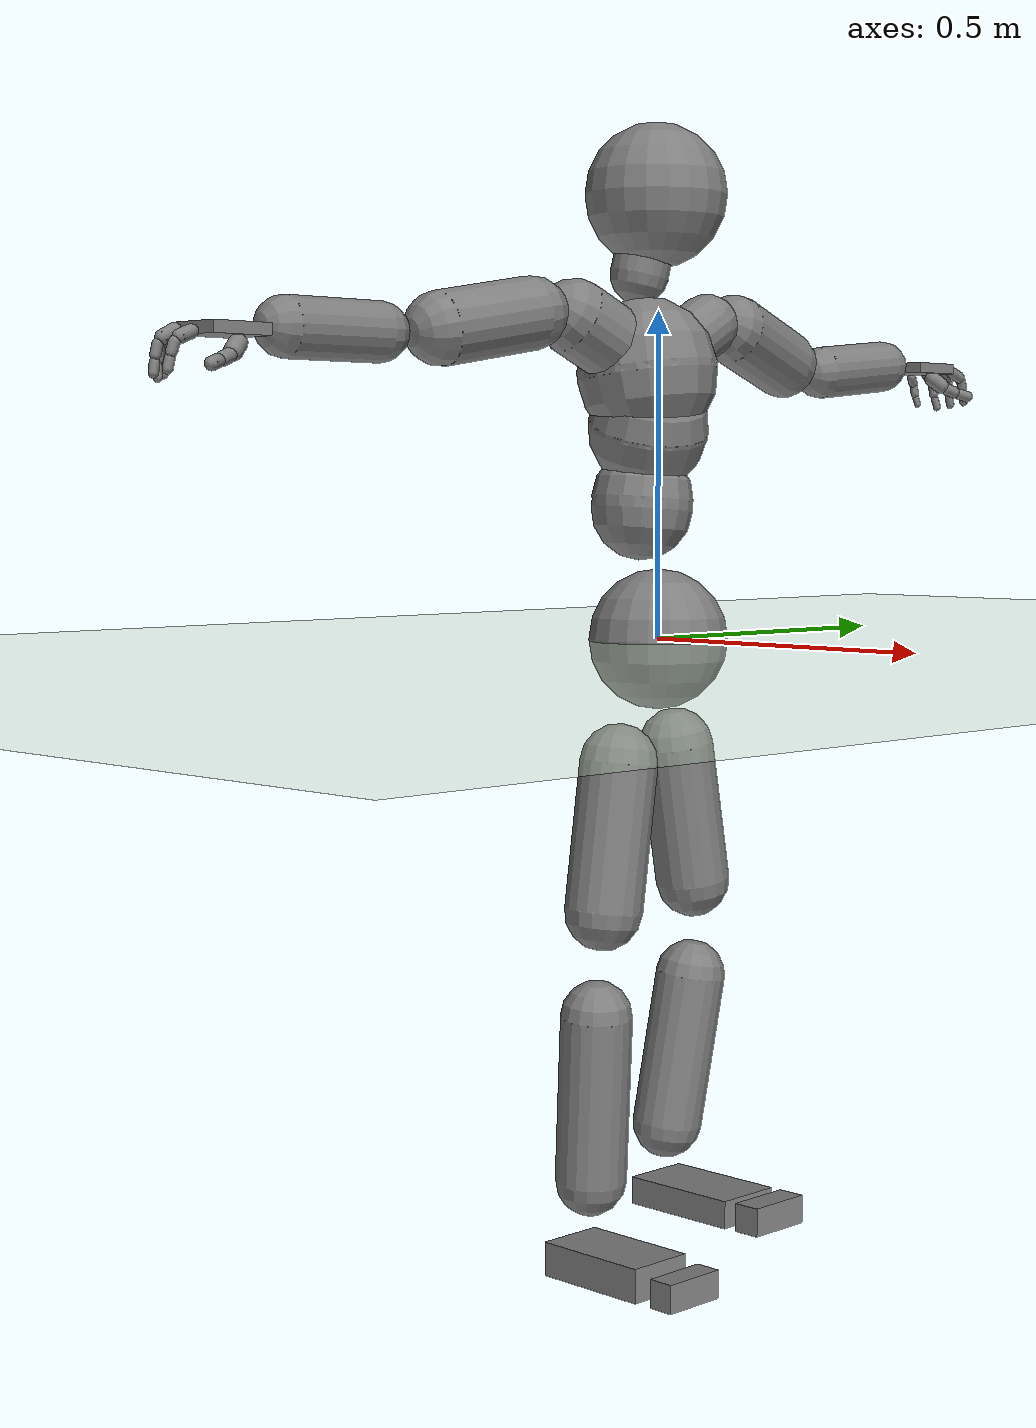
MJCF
<mujoco model="humanoid">
  <compiler coordinate="local" />
  <statistic extent="2" center="0 0 1" />
  <option timestep="0.00555" />
  <default>
    <motor ctrlrange="-1 1" ctrllimited="true" />
    <geom type="capsule" condim="1" friction="1.0 0.05 0.05" solimp=".9 .99 .003" solref=".015 1" />
    <joint type="hinge" damping="0.1" stiffness="5" armature=".007" limited="true" solimplimit="0 .99 .01" />
    <site size=".04" group="3" />
    <default class="force-torque">
      <site type="box" size=".01 .01 .02" rgba="1 0 0 1" />
    </default>
    <default class="touch">
      <site type="capsule" rgba="0 0 1 .3" />
    </default>
  </default>
  <asset>
    <texture type="skybox" builtin="gradient" rgb1=".4 .5 .6" rgb2="0 0 0" width="100" height="100" />
    <texture builtin="flat" height="1278" mark="cross" markrgb="1 1 1" name="texgeom" random="0.01" rgb1="0.8 0.6 0.4" rgb2="0.8 0.6 0.4" type="cube" width="127" />
    <texture builtin="checker" height="100" name="texplane" rgb1="0 0 0" rgb2="0.8 0.8 0.8" type="2d" width="100" />
    <material name="MatPlane" reflectance="0.5" shininess="1" specular="1" texrepeat="60 60" texture="texplane" />
    <material name="geom" texture="texgeom" texuniform="true" />
  </asset>
  <worldbody>
    <light cutoff="100" diffuse="1 1 1" dir="-0 0 -1.3" directional="true" exponent="1" pos="0 0 1.3" specular=".1 .1 .1" />
    <geom conaffinity="1" condim="3" name="floor" pos="0 0 0" rgba="0.8 0.9 0.8 1" size="100 100 .2" type="plane" material="MatPlane" />
    <body name="Pelvis" pos="0 0 0">
      <freejoint name="Pelvis" />
      <geom type="sphere" contype="1" conaffinity="1" density="1000" size="0.1080" pos="0.0000 0.0000 0.0000" name="Pelvis" />
      <body name="L_Hip" pos="-0.0236 0.0529 -0.0971">
        <joint name="L_Hip_x" type="hinge" pos="0 0 0" axis="1 0 0" stiffness="800" damping="80" armature="0.02" range="-180.0000 180.0000" />
        <joint name="L_Hip_y" type="hinge" pos="0 0 0" axis="0 1 0" stiffness="800" damping="80" armature="0.02" range="-180.0000 180.0000" />
        <joint name="L_Hip_z" type="hinge" pos="0 0 0" axis="0 0 1" stiffness="800" damping="80" armature="0.02" range="-180.0000 180.0000" />
        <geom type="capsule" contype="1" conaffinity="1" density="2040.816327" fromto="0.0007 0.0123 -0.0729 0.0029 0.0490 -0.2916" size="0.058" />
        <body name="L_Knee" pos="0.0037 0.0613 -0.3645">
          <joint name="L_Knee_x" type="hinge" pos="0 0 0" axis="1 0 0" stiffness="800" damping="80" armature="0.02" range="-180.0000 180.0000" />
          <joint name="L_Knee_y" type="hinge" pos="0 0 0" axis="0 1 0" stiffness="800" damping="80" armature="0.02" range="-180.0000 180.0000" />
          <joint name="L_Knee_z" type="hinge" pos="0 0 0" axis="0 0 1" stiffness="800" damping="80" armature="0.02" range="-180.0000 180.0000" />
          <geom type="capsule" contype="1" conaffinity="1" density="1234.567901" fromto="-0.0074 -0.0100 -0.0800 -0.0296 -0.0401 -0.3200" size="0.055" />
          <body name="L_Ankle" pos="-0.037 -0.0501 -0.4">
            <joint name="L_Ankle_x" type="hinge" pos="0 0 0" axis="1 0 0" stiffness="800" damping="80" armature="0.02" range="-180.0000 180.0000" />
            <joint name="L_Ankle_y" type="hinge" pos="0 0 0" axis="0 1 0" stiffness="800" damping="80" armature="0.02" range="-180.0000 180.0000" />
            <joint name="L_Ankle_z" type="hinge" pos="0 0 0" axis="0 0 1" stiffness="800" damping="80" armature="0.02" range="-180.0000 180.0000" />
            <geom type="box" contype="1" conaffinity="1" density="1000" pos="0.0709 0.0228 -0.0298" size="0.1004 0.0552 0.0216" quat="1.0000 0.0000 0.0000 0.0000" />
            <body name="L_Toe" pos="0.1418 0.0456 -0.0596">
              <joint name="L_Toe_x" type="hinge" pos="0 0 0" axis="1 0 0" stiffness="500" damping="50" armature="0.02" range="-180.0000 180.0000" />
              <joint name="L_Toe_y" type="hinge" pos="0 0 0" axis="0 1 0" stiffness="500" damping="50" armature="0.02" range="-180.0000 180.0000" />
              <joint name="L_Toe_z" type="hinge" pos="0 0 0" axis="0 0 1" stiffness="500" damping="50" armature="0.02" range="-180.0000 180.0000" />
              <geom type="box" contype="1" conaffinity="1" density="1000" pos="0.0719 -0.0228 0.0304" size="0.022 0.0532 0.0221" quat="1.0000 0.0000 0.0000 0.0000" />
            </body>
          </body>
        </body>
      </body>
      <body name="R_Hip" pos="-0.0169 -0.0579 -0.1123">
        <joint name="R_Hip_x" type="hinge" pos="0 0 0" axis="1 0 0" stiffness="800" damping="80" armature="0.02" range="-180.0000 180.0000" />
        <joint name="R_Hip_y" type="hinge" pos="0 0 0" axis="0 1 0" stiffness="800" damping="80" armature="0.02" range="-180.0000 180.0000" />
        <joint name="R_Hip_z" type="hinge" pos="0 0 0" axis="0 0 1" stiffness="800" damping="80" armature="0.02" range="-180.0000 180.0000" />
        <geom type="capsule" contype="1" conaffinity="1" density="2040.816327" fromto="-0.0014 -0.0098 -0.0759 -0.0055 -0.0391 -0.3038" size="0.0606" />
        <body name="R_Knee" pos="-0.0069 -0.0489 -0.3797">
          <joint name="R_Knee_x" type="hinge" pos="0 0 0" axis="1 0 0" stiffness="800" damping="80" armature="0.02" range="-180.0000 180.0000" />
          <joint name="R_Knee_y" type="hinge" pos="0 0 0" axis="0 1 0" stiffness="800" damping="80" armature="0.02" range="-180.0000 180.0000" />
          <joint name="R_Knee_z" type="hinge" pos="0 0 0" axis="0 0 1" stiffness="800" damping="80" armature="0.02" range="-180.0000 180.0000" />
          <geom type="capsule" contype="1" conaffinity="1" density="1234.567901" fromto="-0.0081 0.0038 -0.0879 -0.0324 0.0152 -0.3516" size="0.0559" />
          <body name="R_Ankle" pos="-0.0405 0.0191 -0.4396">
            <joint name="R_Ankle_x" type="hinge" pos="0 0 0" axis="1 0 0" stiffness="800" damping="80" armature="0.02" range="-180.0000 180.0000" />
            <joint name="R_Ankle_y" type="hinge" pos="0 0 0" axis="0 1 0" stiffness="800" damping="80" armature="0.02" range="-180.0000 180.0000" />
            <joint name="R_Ankle_z" type="hinge" pos="0 0 0" axis="0 0 1" stiffness="800" damping="80" armature="0.02" range="-180.0000 180.0000" />
            <geom type="box" contype="1" conaffinity="1" density="1000" pos="0.0734 -0.0176 -0.0304" size="0.0979 0.0545 0.0266" quat="1.0000 0.0000 0.0000 0.0000" />
            <body name="R_Toe" pos="0.1468 -0.0352 -0.0608">
              <joint name="R_Toe_x" type="hinge" pos="0 0 0" axis="1 0 0" stiffness="500" damping="50" armature="0.02" range="-180.0000 180.0000" />
              <joint name="R_Toe_y" type="hinge" pos="0 0 0" axis="0 1 0" stiffness="500" damping="50" armature="0.02" range="-180.0000 180.0000" />
              <joint name="R_Toe_z" type="hinge" pos="0 0 0" axis="0 0 1" stiffness="500" damping="50" armature="0.02" range="-180.0000 180.0000" />
              <geom type="box" contype="1" conaffinity="1" density="1000" pos="0.0744 0.0176 0.0259" size="0.021 0.0522 0.0221" quat="1.0000 0.0000 0.0000 0.0000" />
            </body>
          </body>
        </body>
      </body>
      <body name="Torso" pos="-0.0392 -0.0024 0.1234">
        <joint name="Torso_x" type="hinge" pos="0 0 0" axis="1 0 0" stiffness="1000" damping="100" armature="0.02" range="-180.0000 180.0000" />
        <joint name="Torso_y" type="hinge" pos="0 0 0" axis="0 1 0" stiffness="1000" damping="100" armature="0.02" range="-180.0000 180.0000" />
        <joint name="Torso_z" type="hinge" pos="0 0 0" axis="0 0 1" stiffness="1000" damping="100" armature="0.02" range="-180.0000 180.0000" />
        <geom type="capsule" contype="1" conaffinity="1" density="1234.567901" fromto="0.0010 0.0056 0.0756 0.0013 0.0068 0.0924" size="0.0787" />
        <body name="Spine" pos="0.0023 0.0124 0.168">
          <joint name="Spine_x" type="hinge" pos="0 0 0" axis="1 0 0" stiffness="1000" damping="100" armature="0.02" range="-180.0000 180.0000" />
          <joint name="Spine_y" type="hinge" pos="0 0 0" axis="0 1 0" stiffness="1000" damping="100" armature="0.02" range="-180.0000 180.0000" />
          <joint name="Spine_z" type="hinge" pos="0 0 0" axis="0 0 1" stiffness="1000" damping="100" armature="0.02" range="-180.0000 180.0000" />
          <geom type="capsule" contype="1" conaffinity="1" density="1234.567901" fromto="0.0097 -0.0046 0.0284 0.0119 -0.0056 0.0347" size="0.093" />
          <body name="Chest" pos="0.0216 -0.0102 0.0631">
            <joint name="Chest_x" type="hinge" pos="0 0 0" axis="1 0 0" stiffness="1000" damping="100" armature="0.02" range="-180.0000 180.0000" />
            <joint name="Chest_y" type="hinge" pos="0 0 0" axis="0 1 0" stiffness="1000" damping="100" armature="0.02" range="-180.0000 180.0000" />
            <joint name="Chest_z" type="hinge" pos="0 0 0" axis="0 0 1" stiffness="1000" damping="100" armature="0.02" range="-180.0000 180.0000" />
            <geom type="capsule" contype="1" conaffinity="1" density="1234.567901" fromto="-0.0056 -0.0020 0.0496 -0.0068 -0.0025 0.0606" size="0.1083" />
            <body name="Neck" pos="-0.0248 -0.0095 0.1718">
              <joint name="Neck_x" type="hinge" pos="0 0 0" axis="1 0 0" stiffness="500" damping="50" armature="0.02" range="-180.0000 180.0000" />
              <joint name="Neck_y" type="hinge" pos="0 0 0" axis="0 1 0" stiffness="500" damping="50" armature="0.02" range="-180.0000 180.0000" />
              <joint name="Neck_z" type="hinge" pos="0 0 0" axis="0 0 1" stiffness="500" damping="50" armature="0.02" range="-180.0000 180.0000" />
              <geom type="capsule" contype="1" conaffinity="1" density="1000" fromto="0.0043 0.0048 0.0301 0.0170 0.0191 0.1204" size="0.0452" />
              <body name="Head" pos="0.0213 0.0239 0.1505">
                <joint name="Head_x" type="hinge" pos="0 0 0" axis="1 0 0" stiffness="500" damping="50" armature="0.02" range="-180.0000 180.0000" />
                <joint name="Head_y" type="hinge" pos="0 0 0" axis="0 1 0" stiffness="500" damping="50" armature="0.02" range="-180.0000 180.0000" />
                <joint name="Head_z" type="hinge" pos="0 0 0" axis="0 0 1" stiffness="500" damping="50" armature="0.02" range="-180.0000 180.0000" />
                <geom type="sphere" contype="1" conaffinity="1" density="1000" size="0.1100" pos="0.0000 0.0000 0.0000" name="Head" />
              </body>
            </body>
            <body name="L_Thorax" pos="-0.0042 0.0404 0.0791">
              <joint name="L_Thorax_x" type="hinge" pos="0 0 0" axis="1 0 0" stiffness="500" damping="50" armature="0.02" range="-180.0000 180.0000" />
              <joint name="L_Thorax_y" type="hinge" pos="0 0 0" axis="0 1 0" stiffness="500" damping="50" armature="0.02" range="-180.0000 180.0000" />
              <joint name="L_Thorax_z" type="hinge" pos="0 0 0" axis="0 0 1" stiffness="500" damping="50" armature="0.02" range="-180.0000 180.0000" />
              <geom type="capsule" contype="1" conaffinity="1" density="1000" fromto="-0.0039 0.0268 0.0134 -0.0156 0.1071 0.0534" size="0.0493" />
              <body name="L_Shoulder" pos="-0.0195 0.1339 0.0668">
                <joint name="L_Shoulder_x" type="hinge" pos="0 0 0" axis="1 0 0" stiffness="500" damping="50" armature="0.02" range="-180.0000 180.0000" />
                <joint name="L_Shoulder_y" type="hinge" pos="0 0 0" axis="0 1 0" stiffness="500" damping="50" armature="0.02" range="-180.0000 180.0000" />
                <joint name="L_Shoulder_z" type="hinge" pos="0 0 0" axis="0 0 1" stiffness="500" damping="50" armature="0.02" range="-180.0000 180.0000" />
                <geom type="capsule" contype="1" conaffinity="1" density="1000" fromto="-0.0088 0.0507 -0.0160 -0.0352 0.2029 -0.0641" size="0.0556" />
                <body name="L_Elbow" pos="-0.044 0.2536 -0.0802">
                  <joint name="L_Elbow_x" type="hinge" pos="0 0 0" axis="1 0 0" stiffness="500" damping="50" armature="0.02" range="-180.0000 180.0000" />
                  <joint name="L_Elbow_y" type="hinge" pos="0 0 0" axis="0 1 0" stiffness="500" damping="50" armature="0.02" range="-180.0000 180.0000" />
                  <joint name="L_Elbow_z" type="hinge" pos="0 0 0" axis="0 0 1" stiffness="500" damping="50" armature="0.02" range="-180.0000 180.0000" />
                  <geom type="capsule" contype="1" conaffinity="1" density="1000" fromto="0.0000 0.0551 0.0054 0.0001 0.2204 0.0214" size="0.0428" />
                  <body name="L_Wrist" pos="0.0001 0.2755 0.0268">
                    <joint name="L_Wrist_x" type="hinge" pos="0 0 0" axis="1 0 0" stiffness="300" damping="30" armature="0.02" range="-180.0000 180.0000" />
                    <joint name="L_Wrist_y" type="hinge" pos="0 0 0" axis="0 1 0" stiffness="300" damping="30" armature="0.02" range="-180.0000 180.0000" />
                    <joint name="L_Wrist_z" type="hinge" pos="0 0 0" axis="0 0 1" stiffness="300" damping="30" armature="0.02" range="-180.0000 180.0000" />
                    <geom type="box" contype="1" conaffinity="1" density="1000" pos="-0.0031 0.0467 -0.0059" size="0.0448 0.0475 0.0085" quat="1.0000 0.0000 0.0000 0.0000" />
                    <body name="L_Index1" pos="0.0221 0.11 -0.0088">
                      <joint name="L_Index1_x" type="hinge" pos="0 0 0" axis="1 0 0" stiffness="100" damping="10" armature="0.02" range="-180.0000 180.0000" />
                      <joint name="L_Index1_y" type="hinge" pos="0 0 0" axis="0 1 0" stiffness="100" damping="10" armature="0.02" range="-180.0000 180.0000" />
                      <joint name="L_Index1_z" type="hinge" pos="0 0 0" axis="0 0 1" stiffness="100" damping="10" armature="0.02" range="-180.0000 180.0000" />
                      <geom type="capsule" contype="1" conaffinity="1" density="1000" fromto="0.0003 0.0064 -0.0025 0.0014 0.0257 -0.0101" size="0.01" />
                      <body name="L_Index2" pos="0.0017 0.0322 -0.0126">
                        <joint name="L_Index2_x" type="hinge" pos="0 0 0" axis="1 0 0" stiffness="100" damping="10" armature="0.02" range="-180.0000 180.0000" />
                        <joint name="L_Index2_y" type="hinge" pos="0 0 0" axis="0 1 0" stiffness="100" damping="10" armature="0.02" range="-180.0000 180.0000" />
                        <joint name="L_Index2_z" type="hinge" pos="0 0 0" axis="0 0 1" stiffness="100" damping="10" armature="0.02" range="-180.0000 180.0000" />
                        <geom type="capsule" contype="1" conaffinity="1" density="1000" fromto="-0.0006 0.0013 -0.0046 -0.0025 0.0053 -0.0185" size="0.008" />
                        <body name="L_Index3" pos="-0.0031 0.0067 -0.0231">
                          <joint name="L_Index3_x" type="hinge" pos="0 0 0" axis="1 0 0" stiffness="100" damping="10" armature="0.02" range="-180.0000 180.0000" />
                          <joint name="L_Index3_y" type="hinge" pos="0 0 0" axis="0 1 0" stiffness="100" damping="10" armature="0.02" range="-180.0000 180.0000" />
                          <joint name="L_Index3_z" type="hinge" pos="0 0 0" axis="0 0 1" stiffness="100" damping="10" armature="0.02" range="-180.0000 180.0000" />
                          <geom type="capsule" contype="1" conaffinity="1" density="1000" fromto="-0.0002 0.0017 -0.0042 -0.0009 0.0069 -0.0169" size="0.0073" />
                        </body>
                      </body>
                    </body>
                    <body name="L_Middle1" pos="-0.0036 0.1182 -0.0057">
                      <joint name="L_Middle1_x" type="hinge" pos="0 0 0" axis="1 0 0" stiffness="100" damping="10" armature="0.02" range="-180.0000 180.0000" />
                      <joint name="L_Middle1_y" type="hinge" pos="0 0 0" axis="0 1 0" stiffness="100" damping="10" armature="0.02" range="-180.0000 180.0000" />
                      <joint name="L_Middle1_z" type="hinge" pos="0 0 0" axis="0 0 1" stiffness="100" damping="10" armature="0.02" range="-180.0000 180.0000" />
                      <geom type="capsule" contype="1" conaffinity="1" density="1000" fromto="-0.0010 0.0056 -0.0033 -0.0040 0.0226 -0.0132" size="0.0102" />
                      <body name="L_Middle2" pos="-0.005 0.0282 -0.0165">
                        <joint name="L_Middle2_x" type="hinge" pos="0 0 0" axis="1 0 0" stiffness="100" damping="10" armature="0.02" range="-180.0000 180.0000" />
                        <joint name="L_Middle2_y" type="hinge" pos="0 0 0" axis="0 1 0" stiffness="100" damping="10" armature="0.02" range="-180.0000 180.0000" />
                        <joint name="L_Middle2_z" type="hinge" pos="0 0 0" axis="0 0 1" stiffness="100" damping="10" armature="0.02" range="-180.0000 180.0000" />
                        <geom type="capsule" contype="1" conaffinity="1" density="1000" fromto="-0.0004 0.0010 -0.0050 -0.0017 0.0039 -0.0201" size="0.0076" />
                        <body name="L_Middle3" pos="-0.0021 0.0048 -0.0251">
                          <joint name="L_Middle3_x" type="hinge" pos="0 0 0" axis="1 0 0" stiffness="100" damping="10" armature="0.02" range="-180.0000 180.0000" />
                          <joint name="L_Middle3_y" type="hinge" pos="0 0 0" axis="0 1 0" stiffness="100" damping="10" armature="0.02" range="-180.0000 180.0000" />
                          <joint name="L_Middle3_z" type="hinge" pos="0 0 0" axis="0 0 1" stiffness="100" damping="10" armature="0.02" range="-180.0000 180.0000" />
                          <geom type="capsule" contype="1" conaffinity="1" density="1000" fromto="-0.0000 0.0014 -0.0046 -0.0001 0.0055 -0.0185" size="0.0069" />
                        </body>
                      </body>
                    </body>
                    <body name="L_Pinky1" pos="-0.0484 0.0907 -0.0149">
                      <joint name="L_Pinky1_x" type="hinge" pos="0 0 0" axis="1 0 0" stiffness="100" damping="10" armature="0.02" range="-180.0000 180.0000" />
                      <joint name="L_Pinky1_y" type="hinge" pos="0 0 0" axis="0 1 0" stiffness="100" damping="10" armature="0.02" range="-180.0000 180.0000" />
                      <joint name="L_Pinky1_z" type="hinge" pos="0 0 0" axis="0 0 1" stiffness="100" damping="10" armature="0.02" range="-180.0000 180.0000" />
                      <geom type="capsule" contype="1" conaffinity="1" density="1000" fromto="-0.0010 0.0026 -0.0032 -0.0039 0.0106 -0.0129" size="0.0076" />
                      <body name="L_Pinky2" pos="-0.0049 0.0132 -0.0161">
                        <joint name="L_Pinky2_x" type="hinge" pos="0 0 0" axis="1 0 0" stiffness="100" damping="10" armature="0.02" range="-180.0000 180.0000" />
                        <joint name="L_Pinky2_y" type="hinge" pos="0 0 0" axis="0 1 0" stiffness="100" damping="10" armature="0.02" range="-180.0000 180.0000" />
                        <joint name="L_Pinky2_z" type="hinge" pos="0 0 0" axis="0 0 1" stiffness="100" damping="10" armature="0.02" range="-180.0000 180.0000" />
                        <geom type="capsule" contype="1" conaffinity="1" density="1000" fromto="0.0002 0.0008 -0.0040 0.0008 0.0031 -0.0162" size="0.0067" />
                        <body name="L_Pinky3" pos="0.0009 0.0039 -0.0202">
                          <joint name="L_Pinky3_x" type="hinge" pos="0 0 0" axis="1 0 0" stiffness="100" damping="10" armature="0.02" range="-180.0000 180.0000" />
                          <joint name="L_Pinky3_y" type="hinge" pos="0 0 0" axis="0 1 0" stiffness="100" damping="10" armature="0.02" range="-180.0000 180.0000" />
                          <joint name="L_Pinky3_z" type="hinge" pos="0 0 0" axis="0 0 1" stiffness="100" damping="10" armature="0.02" range="-180.0000 180.0000" />
                          <geom type="capsule" contype="1" conaffinity="1" density="1000" fromto="0.0006 0.0012 -0.0036 0.0024 0.0047 -0.0146" size="0.0054" />
                        </body>
                      </body>
                    </body>
                    <body name="L_Ring1" pos="-0.0298 0.1052 -0.0088">
                      <joint name="L_Ring1_x" type="hinge" pos="0 0 0" axis="1 0 0" stiffness="100" damping="10" armature="0.02" range="-180.0000 180.0000" />
                      <joint name="L_Ring1_y" type="hinge" pos="0 0 0" axis="0 1 0" stiffness="100" damping="10" armature="0.02" range="-180.0000 180.0000" />
                      <joint name="L_Ring1_z" type="hinge" pos="0 0 0" axis="0 0 1" stiffness="100" damping="10" armature="0.02" range="-180.0000 180.0000" />
                      <geom type="capsule" contype="1" conaffinity="1" density="1000" fromto="-0.0003 0.0050 -0.0036 -0.0011 0.0199 -0.0144" size="0.0086" />
                      <body name="L_Ring2" pos="-0.0014 0.0249 -0.018">
                        <joint name="L_Ring2_x" type="hinge" pos="0 0 0" axis="1 0 0" stiffness="100" damping="10" armature="0.02" range="-180.0000 180.0000" />
                        <joint name="L_Ring2_y" type="hinge" pos="0 0 0" axis="0 1 0" stiffness="100" damping="10" armature="0.02" range="-180.0000 180.0000" />
                        <joint name="L_Ring2_z" type="hinge" pos="0 0 0" axis="0 0 1" stiffness="100" damping="10" armature="0.02" range="-180.0000 180.0000" />
                        <geom type="capsule" contype="1" conaffinity="1" density="1000" fromto="0.0003 0.0008 -0.0050 0.0013 0.0031 -0.0201" size="0.0078" />
                        <body name="L_Ring3" pos="0.0017 0.0039 -0.0252">
                          <joint name="L_Ring3_x" type="hinge" pos="0 0 0" axis="1 0 0" stiffness="100" damping="10" armature="0.02" range="-180.0000 180.0000" />
                          <joint name="L_Ring3_y" type="hinge" pos="0 0 0" axis="0 1 0" stiffness="100" damping="10" armature="0.02" range="-180.0000 180.0000" />
                          <joint name="L_Ring3_z" type="hinge" pos="0 0 0" axis="0 0 1" stiffness="100" damping="10" armature="0.02" range="-180.0000 180.0000" />
                          <geom type="capsule" contype="1" conaffinity="1" density="1000" fromto="0.0007 0.0012 -0.0046 0.0029 0.0047 -0.0185" size="0.0064" />
                        </body>
                      </body>
                    </body>
                    <body name="L_Thumb1" pos="0.0288 0.0433 -0.0205">
                      <joint name="L_Thumb1_x" type="hinge" pos="0 0 0" axis="1 0 0" stiffness="100" damping="10" armature="0.02" range="-180.0000 180.0000" />
                      <joint name="L_Thumb1_y" type="hinge" pos="0 0 0" axis="0 1 0" stiffness="100" damping="10" armature="0.02" range="-180.0000 180.0000" />
                      <joint name="L_Thumb1_z" type="hinge" pos="0 0 0" axis="0 0 1" stiffness="100" damping="10" armature="0.02" range="-180.0000 180.0000" />
                      <geom type="capsule" contype="1" conaffinity="1" density="1000" fromto="0.0028 0.0046 -0.0039 0.0112 0.0186 -0.0154" size="0.0135" />
                      <body name="L_Thumb2" pos="0.014 0.0232 -0.0193">
                        <joint name="L_Thumb2_x" type="hinge" pos="0 0 0" axis="1 0 0" stiffness="100" damping="10" armature="0.02" range="-180.0000 180.0000" />
                        <joint name="L_Thumb2_y" type="hinge" pos="0 0 0" axis="0 1 0" stiffness="100" damping="10" armature="0.02" range="-180.0000 180.0000" />
                        <joint name="L_Thumb2_z" type="hinge" pos="0 0 0" axis="0 0 1" stiffness="100" damping="10" armature="0.02" range="-180.0000 180.0000" />
                        <geom type="capsule" contype="1" conaffinity="1" density="1000" fromto="0.0016 0.0051 -0.0018 0.0064 0.0204 -0.0072" size="0.0103" />
                        <body name="L_Thumb3" pos="0.008 0.0255 -0.0089">
                          <joint name="L_Thumb3_x" type="hinge" pos="0 0 0" axis="1 0 0" stiffness="100" damping="10" armature="0.02" range="-180.0000 180.0000" />
                          <joint name="L_Thumb3_y" type="hinge" pos="0 0 0" axis="0 1 0" stiffness="100" damping="10" armature="0.02" range="-180.0000 180.0000" />
                          <joint name="L_Thumb3_z" type="hinge" pos="0 0 0" axis="0 0 1" stiffness="100" damping="10" armature="0.02" range="-180.0000 180.0000" />
                          <geom type="capsule" contype="1" conaffinity="1" density="1000" fromto="0.0020 0.0055 -0.0014 0.0080 0.0220 -0.0056" size="0.0095" />
                        </body>
                      </body>
                    </body>
                  </body>
                </body>
              </body>
            </body>
            <body name="R_Thorax" pos="-0.0081 -0.0443 0.0799">
              <joint name="R_Thorax_x" type="hinge" pos="0 0 0" axis="1 0 0" stiffness="500" damping="50" armature="0.02" range="-180.0000 180.0000" />
              <joint name="R_Thorax_y" type="hinge" pos="0 0 0" axis="0 1 0" stiffness="500" damping="50" armature="0.02" range="-180.0000 180.0000" />
              <joint name="R_Thorax_z" type="hinge" pos="0 0 0" axis="0 0 1" stiffness="500" damping="50" armature="0.02" range="-180.0000 180.0000" />
              <geom type="capsule" contype="1" conaffinity="1" density="1000" fromto="-0.0030 -0.0248 0.0127 -0.0122 -0.0994 0.0510" size="0.0583" />
              <body name="R_Shoulder" pos="-0.0152 -0.1242 0.0637">
                <joint name="R_Shoulder_x" type="hinge" pos="0 0 0" axis="1 0 0" stiffness="500" damping="50" armature="0.02" range="-180.0000 180.0000" />
                <joint name="R_Shoulder_y" type="hinge" pos="0 0 0" axis="0 1 0" stiffness="500" damping="50" armature="0.02" range="-180.0000 180.0000" />
                <joint name="R_Shoulder_z" type="hinge" pos="0 0 0" axis="0 0 1" stiffness="500" damping="50" armature="0.02" range="-180.0000 180.0000" />
                <geom type="capsule" contype="1" conaffinity="1" density="1000" fromto="-0.0064 -0.0542 -0.0096 -0.0257 -0.2166 -0.0385" size="0.0549" />
                <body name="R_Elbow" pos="-0.0321 -0.2708 -0.0481">
                  <joint name="R_Elbow_x" type="hinge" pos="0 0 0" axis="1 0 0" stiffness="500" damping="50" armature="0.02" range="-180.0000 180.0000" />
                  <joint name="R_Elbow_y" type="hinge" pos="0 0 0" axis="0 1 0" stiffness="500" damping="50" armature="0.02" range="-180.0000 180.0000" />
                  <joint name="R_Elbow_z" type="hinge" pos="0 0 0" axis="0 0 1" stiffness="500" damping="50" armature="0.02" range="-180.0000 180.0000" />
                  <geom type="capsule" contype="1" conaffinity="1" density="1000" fromto="-0.0022 -0.0534 0.0001 -0.0090 -0.2137 0.0006" size="0.0439" />
                  <body name="R_Wrist" pos="-0.0112 -0.2671 0.0007">
                    <joint name="R_Wrist_x" type="hinge" pos="0 0 0" axis="1 0 0" stiffness="300" damping="30" armature="0.02" range="-180.0000 180.0000" />
                    <joint name="R_Wrist_y" type="hinge" pos="0 0 0" axis="0 1 0" stiffness="300" damping="30" armature="0.02" range="-180.0000 180.0000" />
                    <joint name="R_Wrist_z" type="hinge" pos="0 0 0" axis="0 0 1" stiffness="300" damping="30" armature="0.02" range="-180.0000 180.0000" />
                    <geom type="box" contype="1" conaffinity="1" density="1000" pos="-0.0036 -0.0464 -0.0077" size="0.0448 0.0488 0.0086" quat="1.0000 0.0000 0.0000 0.0000" />
                    <body name="R_Index1" pos="0.0209 -0.1094 -0.0125">
                      <joint name="R_Index1_x" type="hinge" pos="0 0 0" axis="1 0 0" stiffness="100" damping="10" armature="0.02" range="-180.0000 180.0000" />
                      <joint name="R_Index1_y" type="hinge" pos="0 0 0" axis="0 1 0" stiffness="100" damping="10" armature="0.02" range="-180.0000 180.0000" />
                      <joint name="R_Index1_z" type="hinge" pos="0 0 0" axis="0 0 1" stiffness="100" damping="10" armature="0.02" range="-180.0000 180.0000" />
                      <geom type="capsule" contype="1" conaffinity="1" density="1000" fromto="0.0003 -0.0064 -0.0025 0.0014 -0.0257 -0.0101" size="0.01" />
                      <body name="R_Index2" pos="0.0017 -0.0322 -0.0126">
                        <joint name="R_Index2_x" type="hinge" pos="0 0 0" axis="1 0 0" stiffness="100" damping="10" armature="0.02" range="-180.0000 180.0000" />
                        <joint name="R_Index2_y" type="hinge" pos="0 0 0" axis="0 1 0" stiffness="100" damping="10" armature="0.02" range="-180.0000 180.0000" />
                        <joint name="R_Index2_z" type="hinge" pos="0 0 0" axis="0 0 1" stiffness="100" damping="10" armature="0.02" range="-180.0000 180.0000" />
                        <geom type="capsule" contype="1" conaffinity="1" density="1000" fromto="-0.0006 -0.0013 -0.0046 -0.0025 -0.0053 -0.0185" size="0.008" />
                        <body name="R_Index3" pos="-0.0031 -0.0067 -0.0231">
                          <joint name="R_Index3_x" type="hinge" pos="0 0 0" axis="1 0 0" stiffness="100" damping="10" armature="0.02" range="-180.0000 180.0000" />
                          <joint name="R_Index3_y" type="hinge" pos="0 0 0" axis="0 1 0" stiffness="100" damping="10" armature="0.02" range="-180.0000 180.0000" />
                          <joint name="R_Index3_z" type="hinge" pos="0 0 0" axis="0 0 1" stiffness="100" damping="10" armature="0.02" range="-180.0000 180.0000" />
                          <geom type="capsule" contype="1" conaffinity="1" density="1000" fromto="-0.0002 -0.0009 -0.0042 -0.0009 -0.0037 -0.0169" size="0.0074" />
                        </body>
                      </body>
                    </body>
                    <body name="R_Middle1" pos="-0.0047 -0.1176 -0.0095">
                      <joint name="R_Middle1_x" type="hinge" pos="0 0 0" axis="1 0 0" stiffness="100" damping="10" armature="0.02" range="-180.0000 180.0000" />
                      <joint name="R_Middle1_y" type="hinge" pos="0 0 0" axis="0 1 0" stiffness="100" damping="10" armature="0.02" range="-180.0000 180.0000" />
                      <joint name="R_Middle1_z" type="hinge" pos="0 0 0" axis="0 0 1" stiffness="100" damping="10" armature="0.02" range="-180.0000 180.0000" />
                      <geom type="capsule" contype="1" conaffinity="1" density="1000" fromto="-0.0010 -0.0056 -0.0033 -0.0040 -0.0226 -0.0132" size="0.0102" />
                      <body name="R_Middle2" pos="-0.005 -0.0282 -0.0165">
                        <joint name="R_Middle2_x" type="hinge" pos="0 0 0" axis="1 0 0" stiffness="100" damping="10" armature="0.02" range="-180.0000 180.0000" />
                        <joint name="R_Middle2_y" type="hinge" pos="0 0 0" axis="0 1 0" stiffness="100" damping="10" armature="0.02" range="-180.0000 180.0000" />
                        <joint name="R_Middle2_z" type="hinge" pos="0 0 0" axis="0 0 1" stiffness="100" damping="10" armature="0.02" range="-180.0000 180.0000" />
                        <geom type="capsule" contype="1" conaffinity="1" density="1000" fromto="-0.0004 -0.0010 -0.0050 -0.0017 -0.0039 -0.0201" size="0.0076" />
                        <body name="R_Middle3" pos="-0.0021 -0.0048 -0.0251">
                          <joint name="R_Middle3_x" type="hinge" pos="0 0 0" axis="1 0 0" stiffness="100" damping="10" armature="0.02" range="-180.0000 180.0000" />
                          <joint name="R_Middle3_y" type="hinge" pos="0 0 0" axis="0 1 0" stiffness="100" damping="10" armature="0.02" range="-180.0000 180.0000" />
                          <joint name="R_Middle3_z" type="hinge" pos="0 0 0" axis="0 0 1" stiffness="100" damping="10" armature="0.02" range="-180.0000 180.0000" />
                          <geom type="capsule" contype="1" conaffinity="1" density="1000" fromto="-0.0000 -0.0006 -0.0046 -0.0001 -0.0023 -0.0185" size="0.007" />
                        </body>
                      </body>
                    </body>
                    <body name="R_Pinky1" pos="-0.0495 -0.0901 -0.0187">
                      <joint name="R_Pinky1_x" type="hinge" pos="0 0 0" axis="1 0 0" stiffness="100" damping="10" armature="0.02" range="-180.0000 180.0000" />
                      <joint name="R_Pinky1_y" type="hinge" pos="0 0 0" axis="0 1 0" stiffness="100" damping="10" armature="0.02" range="-180.0000 180.0000" />
                      <joint name="R_Pinky1_z" type="hinge" pos="0 0 0" axis="0 0 1" stiffness="100" damping="10" armature="0.02" range="-180.0000 180.0000" />
                      <geom type="capsule" contype="1" conaffinity="1" density="1000" fromto="-0.0010 -0.0026 -0.0032 -0.0039 -0.0106 -0.0129" size="0.0076" />
                      <body name="R_Pinky2" pos="-0.0049 -0.0132 -0.0161">
                        <joint name="R_Pinky2_x" type="hinge" pos="0 0 0" axis="1 0 0" stiffness="100" damping="10" armature="0.02" range="-180.0000 180.0000" />
                        <joint name="R_Pinky2_y" type="hinge" pos="0 0 0" axis="0 1 0" stiffness="100" damping="10" armature="0.02" range="-180.0000 180.0000" />
                        <joint name="R_Pinky2_z" type="hinge" pos="0 0 0" axis="0 0 1" stiffness="100" damping="10" armature="0.02" range="-180.0000 180.0000" />
                        <geom type="capsule" contype="1" conaffinity="1" density="1000" fromto="0.0002 -0.0008 -0.0040 0.0008 -0.0031 -0.0162" size="0.0067" />
                        <body name="R_Pinky3" pos="0.0009 -0.0039 -0.0202">
                          <joint name="R_Pinky3_x" type="hinge" pos="0 0 0" axis="1 0 0" stiffness="100" damping="10" armature="0.02" range="-180.0000 180.0000" />
                          <joint name="R_Pinky3_y" type="hinge" pos="0 0 0" axis="0 1 0" stiffness="100" damping="10" armature="0.02" range="-180.0000 180.0000" />
                          <joint name="R_Pinky3_z" type="hinge" pos="0 0 0" axis="0 0 1" stiffness="100" damping="10" armature="0.02" range="-180.0000 180.0000" />
                          <geom type="capsule" contype="1" conaffinity="1" density="1000" fromto="0.0006 -0.0004 -0.0036 0.0024 -0.0015 -0.0146" size="0.0054" />
                        </body>
                      </body>
                    </body>
                    <body name="R_Ring1" pos="-0.0309 -0.1046 -0.0125">
                      <joint name="R_Ring1_x" type="hinge" pos="0 0 0" axis="1 0 0" stiffness="100" damping="10" armature="0.02" range="-180.0000 180.0000" />
                      <joint name="R_Ring1_y" type="hinge" pos="0 0 0" axis="0 1 0" stiffness="100" damping="10" armature="0.02" range="-180.0000 180.0000" />
                      <joint name="R_Ring1_z" type="hinge" pos="0 0 0" axis="0 0 1" stiffness="100" damping="10" armature="0.02" range="-180.0000 180.0000" />
                      <geom type="capsule" contype="1" conaffinity="1" density="1000" fromto="-0.0003 -0.0050 -0.0036 -0.0011 -0.0199 -0.0144" size="0.0086" />
                      <body name="R_Ring2" pos="-0.0014 -0.0249 -0.018">
                        <joint name="R_Ring2_x" type="hinge" pos="0 0 0" axis="1 0 0" stiffness="100" damping="10" armature="0.02" range="-180.0000 180.0000" />
                        <joint name="R_Ring2_y" type="hinge" pos="0 0 0" axis="0 1 0" stiffness="100" damping="10" armature="0.02" range="-180.0000 180.0000" />
                        <joint name="R_Ring2_z" type="hinge" pos="0 0 0" axis="0 0 1" stiffness="100" damping="10" armature="0.02" range="-180.0000 180.0000" />
                        <geom type="capsule" contype="1" conaffinity="1" density="1000" fromto="0.0003 -0.0008 -0.0050 0.0013 -0.0031 -0.0201" size="0.0078" />
                        <body name="R_Ring3" pos="0.0017 -0.0039 -0.0252">
                          <joint name="R_Ring3_x" type="hinge" pos="0 0 0" axis="1 0 0" stiffness="100" damping="10" armature="0.02" range="-180.0000 180.0000" />
                          <joint name="R_Ring3_y" type="hinge" pos="0 0 0" axis="0 1 0" stiffness="100" damping="10" armature="0.02" range="-180.0000 180.0000" />
                          <joint name="R_Ring3_z" type="hinge" pos="0 0 0" axis="0 0 1" stiffness="100" damping="10" armature="0.02" range="-180.0000 180.0000" />
                          <geom type="capsule" contype="1" conaffinity="1" density="1000" fromto="0.0007 -0.0004 -0.0046 0.0029 -0.0015 -0.0185" size="0.0065" />
                        </body>
                      </body>
                    </body>
                    <body name="R_Thumb1" pos="0.0277 -0.0427 -0.0242">
                      <joint name="R_Thumb1_x" type="hinge" pos="0 0 0" axis="1 0 0" stiffness="100" damping="10" armature="0.02" range="-180.0000 180.0000" />
                      <joint name="R_Thumb1_y" type="hinge" pos="0 0 0" axis="0 1 0" stiffness="100" damping="10" armature="0.02" range="-180.0000 180.0000" />
                      <joint name="R_Thumb1_z" type="hinge" pos="0 0 0" axis="0 0 1" stiffness="100" damping="10" armature="0.02" range="-180.0000 180.0000" />
                      <geom type="capsule" contype="1" conaffinity="1" density="1000" fromto="0.0028 -0.0046 -0.0039 0.0112 -0.0186 -0.0154" size="0.0134" />
                      <body name="R_Thumb2" pos="0.014 -0.0232 -0.0193">
                        <joint name="R_Thumb2_x" type="hinge" pos="0 0 0" axis="1 0 0" stiffness="100" damping="10" armature="0.02" range="-180.0000 180.0000" />
                        <joint name="R_Thumb2_y" type="hinge" pos="0 0 0" axis="0 1 0" stiffness="100" damping="10" armature="0.02" range="-180.0000 180.0000" />
                        <joint name="R_Thumb2_z" type="hinge" pos="0 0 0" axis="0 0 1" stiffness="100" damping="10" armature="0.02" range="-180.0000 180.0000" />
                        <geom type="capsule" contype="1" conaffinity="1" density="1000" fromto="0.0016 -0.0051 -0.0018 0.0064 -0.0204 -0.0072" size="0.0103" />
                        <body name="R_Thumb3" pos="0.008 -0.0255 -0.0089">
                          <joint name="R_Thumb3_x" type="hinge" pos="0 0 0" axis="1 0 0" stiffness="100" damping="10" armature="0.02" range="-180.0000 180.0000" />
                          <joint name="R_Thumb3_y" type="hinge" pos="0 0 0" axis="0 1 0" stiffness="100" damping="10" armature="0.02" range="-180.0000 180.0000" />
                          <joint name="R_Thumb3_z" type="hinge" pos="0 0 0" axis="0 0 1" stiffness="100" damping="10" armature="0.02" range="-180.0000 180.0000" />
                          <geom type="capsule" contype="1" conaffinity="1" density="1000" fromto="0.0020 -0.0047 -0.0014 0.0080 -0.0188 -0.0056" size="0.0098" />
                        </body>
                      </body>
                    </body>
                  </body>
                </body>
              </body>
            </body>
          </body>
        </body>
      </body>
    </body>
  </worldbody>
  <actuator>
    <motor name="L_Hip_x" joint="L_Hip_x" gear="1" />
    <motor name="L_Hip_y" joint="L_Hip_y" gear="1" />
    <motor name="L_Hip_z" joint="L_Hip_z" gear="1" />
    <motor name="L_Knee_x" joint="L_Knee_x" gear="1" />
    <motor name="L_Knee_y" joint="L_Knee_y" gear="1" />
    <motor name="L_Knee_z" joint="L_Knee_z" gear="1" />
    <motor name="L_Ankle_x" joint="L_Ankle_x" gear="1" />
    <motor name="L_Ankle_y" joint="L_Ankle_y" gear="1" />
    <motor name="L_Ankle_z" joint="L_Ankle_z" gear="1" />
    <motor name="L_Toe_x" joint="L_Toe_x" gear="1" />
    <motor name="L_Toe_y" joint="L_Toe_y" gear="1" />
    <motor name="L_Toe_z" joint="L_Toe_z" gear="1" />
    <motor name="R_Hip_x" joint="R_Hip_x" gear="1" />
    <motor name="R_Hip_y" joint="R_Hip_y" gear="1" />
    <motor name="R_Hip_z" joint="R_Hip_z" gear="1" />
    <motor name="R_Knee_x" joint="R_Knee_x" gear="1" />
    <motor name="R_Knee_y" joint="R_Knee_y" gear="1" />
    <motor name="R_Knee_z" joint="R_Knee_z" gear="1" />
    <motor name="R_Ankle_x" joint="R_Ankle_x" gear="1" />
    <motor name="R_Ankle_y" joint="R_Ankle_y" gear="1" />
    <motor name="R_Ankle_z" joint="R_Ankle_z" gear="1" />
    <motor name="R_Toe_x" joint="R_Toe_x" gear="1" />
    <motor name="R_Toe_y" joint="R_Toe_y" gear="1" />
    <motor name="R_Toe_z" joint="R_Toe_z" gear="1" />
    <motor name="Torso_x" joint="Torso_x" gear="1" />
    <motor name="Torso_y" joint="Torso_y" gear="1" />
    <motor name="Torso_z" joint="Torso_z" gear="1" />
    <motor name="Spine_x" joint="Spine_x" gear="1" />
    <motor name="Spine_y" joint="Spine_y" gear="1" />
    <motor name="Spine_z" joint="Spine_z" gear="1" />
    <motor name="Chest_x" joint="Chest_x" gear="1" />
    <motor name="Chest_y" joint="Chest_y" gear="1" />
    <motor name="Chest_z" joint="Chest_z" gear="1" />
    <motor name="Neck_x" joint="Neck_x" gear="1" />
    <motor name="Neck_y" joint="Neck_y" gear="1" />
    <motor name="Neck_z" joint="Neck_z" gear="1" />
    <motor name="Head_x" joint="Head_x" gear="1" />
    <motor name="Head_y" joint="Head_y" gear="1" />
    <motor name="Head_z" joint="Head_z" gear="1" />
    <motor name="L_Thorax_x" joint="L_Thorax_x" gear="1" />
    <motor name="L_Thorax_y" joint="L_Thorax_y" gear="1" />
    <motor name="L_Thorax_z" joint="L_Thorax_z" gear="1" />
    <motor name="L_Shoulder_x" joint="L_Shoulder_x" gear="1" />
    <motor name="L_Shoulder_y" joint="L_Shoulder_y" gear="1" />
    <motor name="L_Shoulder_z" joint="L_Shoulder_z" gear="1" />
    <motor name="L_Elbow_x" joint="L_Elbow_x" gear="1" />
    <motor name="L_Elbow_y" joint="L_Elbow_y" gear="1" />
    <motor name="L_Elbow_z" joint="L_Elbow_z" gear="1" />
    <motor name="L_Wrist_x" joint="L_Wrist_x" gear="1" />
    <motor name="L_Wrist_y" joint="L_Wrist_y" gear="1" />
    <motor name="L_Wrist_z" joint="L_Wrist_z" gear="1" />
    <motor name="L_Index1_x" joint="L_Index1_x" gear="1" />
    <motor name="L_Index1_y" joint="L_Index1_y" gear="1" />
    <motor name="L_Index1_z" joint="L_Index1_z" gear="1" />
    <motor name="L_Index2_x" joint="L_Index2_x" gear="1" />
    <motor name="L_Index2_y" joint="L_Index2_y" gear="1" />
    <motor name="L_Index2_z" joint="L_Index2_z" gear="1" />
    <motor name="L_Index3_x" joint="L_Index3_x" gear="1" />
    <motor name="L_Index3_y" joint="L_Index3_y" gear="1" />
    <motor name="L_Index3_z" joint="L_Index3_z" gear="1" />
    <motor name="L_Middle1_x" joint="L_Middle1_x" gear="1" />
    <motor name="L_Middle1_y" joint="L_Middle1_y" gear="1" />
    <motor name="L_Middle1_z" joint="L_Middle1_z" gear="1" />
    <motor name="L_Middle2_x" joint="L_Middle2_x" gear="1" />
    <motor name="L_Middle2_y" joint="L_Middle2_y" gear="1" />
    <motor name="L_Middle2_z" joint="L_Middle2_z" gear="1" />
    <motor name="L_Middle3_x" joint="L_Middle3_x" gear="1" />
    <motor name="L_Middle3_y" joint="L_Middle3_y" gear="1" />
    <motor name="L_Middle3_z" joint="L_Middle3_z" gear="1" />
    <motor name="L_Pinky1_x" joint="L_Pinky1_x" gear="1" />
    <motor name="L_Pinky1_y" joint="L_Pinky1_y" gear="1" />
    <motor name="L_Pinky1_z" joint="L_Pinky1_z" gear="1" />
    <motor name="L_Pinky2_x" joint="L_Pinky2_x" gear="1" />
    <motor name="L_Pinky2_y" joint="L_Pinky2_y" gear="1" />
    <motor name="L_Pinky2_z" joint="L_Pinky2_z" gear="1" />
    <motor name="L_Pinky3_x" joint="L_Pinky3_x" gear="1" />
    <motor name="L_Pinky3_y" joint="L_Pinky3_y" gear="1" />
    <motor name="L_Pinky3_z" joint="L_Pinky3_z" gear="1" />
    <motor name="L_Ring1_x" joint="L_Ring1_x" gear="1" />
    <motor name="L_Ring1_y" joint="L_Ring1_y" gear="1" />
    <motor name="L_Ring1_z" joint="L_Ring1_z" gear="1" />
    <motor name="L_Ring2_x" joint="L_Ring2_x" gear="1" />
    <motor name="L_Ring2_y" joint="L_Ring2_y" gear="1" />
    <motor name="L_Ring2_z" joint="L_Ring2_z" gear="1" />
    <motor name="L_Ring3_x" joint="L_Ring3_x" gear="1" />
    <motor name="L_Ring3_y" joint="L_Ring3_y" gear="1" />
    <motor name="L_Ring3_z" joint="L_Ring3_z" gear="1" />
    <motor name="L_Thumb1_x" joint="L_Thumb1_x" gear="1" />
    <motor name="L_Thumb1_y" joint="L_Thumb1_y" gear="1" />
    <motor name="L_Thumb1_z" joint="L_Thumb1_z" gear="1" />
    <motor name="L_Thumb2_x" joint="L_Thumb2_x" gear="1" />
    <motor name="L_Thumb2_y" joint="L_Thumb2_y" gear="1" />
    <motor name="L_Thumb2_z" joint="L_Thumb2_z" gear="1" />
    <motor name="L_Thumb3_x" joint="L_Thumb3_x" gear="1" />
    <motor name="L_Thumb3_y" joint="L_Thumb3_y" gear="1" />
    <motor name="L_Thumb3_z" joint="L_Thumb3_z" gear="1" />
    <motor name="R_Thorax_x" joint="R_Thorax_x" gear="1" />
    <motor name="R_Thorax_y" joint="R_Thorax_y" gear="1" />
    <motor name="R_Thorax_z" joint="R_Thorax_z" gear="1" />
    <motor name="R_Shoulder_x" joint="R_Shoulder_x" gear="1" />
    <motor name="R_Shoulder_y" joint="R_Shoulder_y" gear="1" />
    <motor name="R_Shoulder_z" joint="R_Shoulder_z" gear="1" />
    <motor name="R_Elbow_x" joint="R_Elbow_x" gear="1" />
    <motor name="R_Elbow_y" joint="R_Elbow_y" gear="1" />
    <motor name="R_Elbow_z" joint="R_Elbow_z" gear="1" />
    <motor name="R_Wrist_x" joint="R_Wrist_x" gear="1" />
    <motor name="R_Wrist_y" joint="R_Wrist_y" gear="1" />
    <motor name="R_Wrist_z" joint="R_Wrist_z" gear="1" />
    <motor name="R_Index1_x" joint="R_Index1_x" gear="1" />
    <motor name="R_Index1_y" joint="R_Index1_y" gear="1" />
    <motor name="R_Index1_z" joint="R_Index1_z" gear="1" />
    <motor name="R_Index2_x" joint="R_Index2_x" gear="1" />
    <motor name="R_Index2_y" joint="R_Index2_y" gear="1" />
    <motor name="R_Index2_z" joint="R_Index2_z" gear="1" />
    <motor name="R_Index3_x" joint="R_Index3_x" gear="1" />
    <motor name="R_Index3_y" joint="R_Index3_y" gear="1" />
    <motor name="R_Index3_z" joint="R_Index3_z" gear="1" />
    <motor name="R_Middle1_x" joint="R_Middle1_x" gear="1" />
    <motor name="R_Middle1_y" joint="R_Middle1_y" gear="1" />
    <motor name="R_Middle1_z" joint="R_Middle1_z" gear="1" />
    <motor name="R_Middle2_x" joint="R_Middle2_x" gear="1" />
    <motor name="R_Middle2_y" joint="R_Middle2_y" gear="1" />
    <motor name="R_Middle2_z" joint="R_Middle2_z" gear="1" />
    <motor name="R_Middle3_x" joint="R_Middle3_x" gear="1" />
    <motor name="R_Middle3_y" joint="R_Middle3_y" gear="1" />
    <motor name="R_Middle3_z" joint="R_Middle3_z" gear="1" />
    <motor name="R_Pinky1_x" joint="R_Pinky1_x" gear="1" />
    <motor name="R_Pinky1_y" joint="R_Pinky1_y" gear="1" />
    <motor name="R_Pinky1_z" joint="R_Pinky1_z" gear="1" />
    <motor name="R_Pinky2_x" joint="R_Pinky2_x" gear="1" />
    <motor name="R_Pinky2_y" joint="R_Pinky2_y" gear="1" />
    <motor name="R_Pinky2_z" joint="R_Pinky2_z" gear="1" />
    <motor name="R_Pinky3_x" joint="R_Pinky3_x" gear="1" />
    <motor name="R_Pinky3_y" joint="R_Pinky3_y" gear="1" />
    <motor name="R_Pinky3_z" joint="R_Pinky3_z" gear="1" />
    <motor name="R_Ring1_x" joint="R_Ring1_x" gear="1" />
    <motor name="R_Ring1_y" joint="R_Ring1_y" gear="1" />
    <motor name="R_Ring1_z" joint="R_Ring1_z" gear="1" />
    <motor name="R_Ring2_x" joint="R_Ring2_x" gear="1" />
    <motor name="R_Ring2_y" joint="R_Ring2_y" gear="1" />
    <motor name="R_Ring2_z" joint="R_Ring2_z" gear="1" />
    <motor name="R_Ring3_x" joint="R_Ring3_x" gear="1" />
    <motor name="R_Ring3_y" joint="R_Ring3_y" gear="1" />
    <motor name="R_Ring3_z" joint="R_Ring3_z" gear="1" />
    <motor name="R_Thumb1_x" joint="R_Thumb1_x" gear="1" />
    <motor name="R_Thumb1_y" joint="R_Thumb1_y" gear="1" />
    <motor name="R_Thumb1_z" joint="R_Thumb1_z" gear="1" />
    <motor name="R_Thumb2_x" joint="R_Thumb2_x" gear="1" />
    <motor name="R_Thumb2_y" joint="R_Thumb2_y" gear="1" />
    <motor name="R_Thumb2_z" joint="R_Thumb2_z" gear="1" />
    <motor name="R_Thumb3_x" joint="R_Thumb3_x" gear="1" />
    <motor name="R_Thumb3_y" joint="R_Thumb3_y" gear="1" />
    <motor name="R_Thumb3_z" joint="R_Thumb3_z" gear="1" />
  </actuator>
  <contact />
  <size njmax="700" nconmax="700" />
</mujoco>
